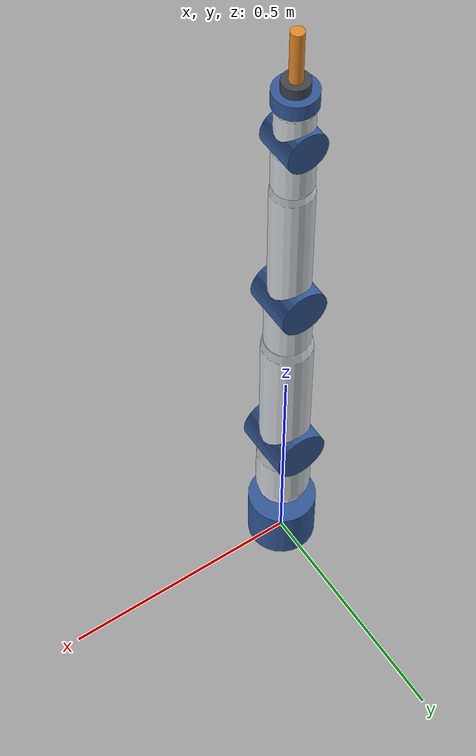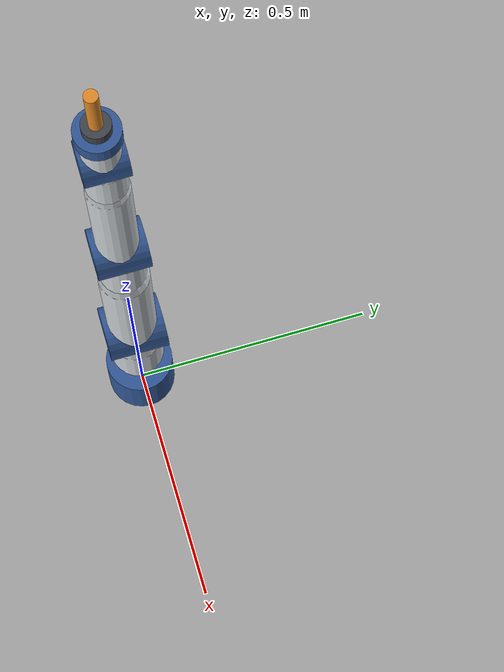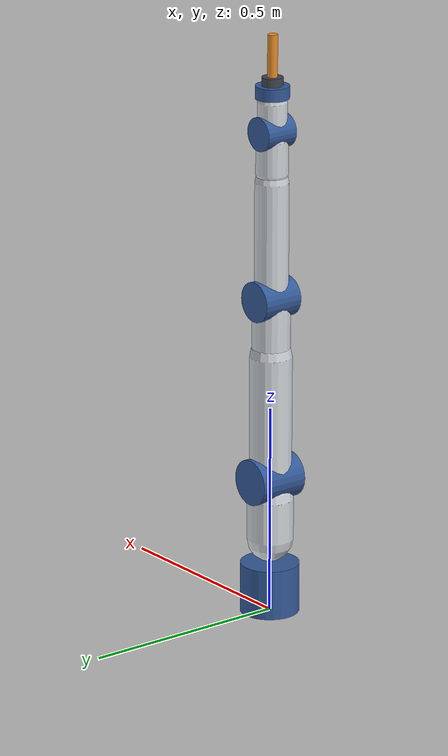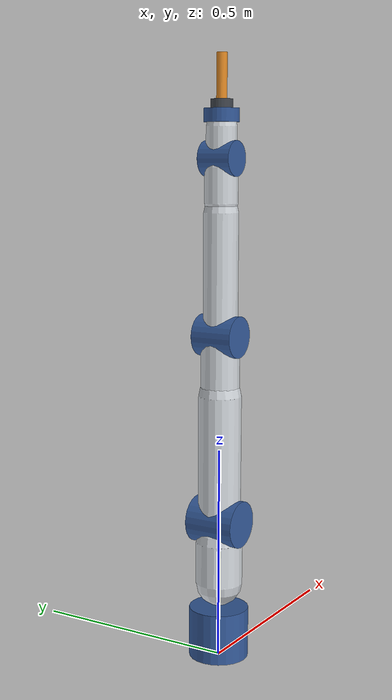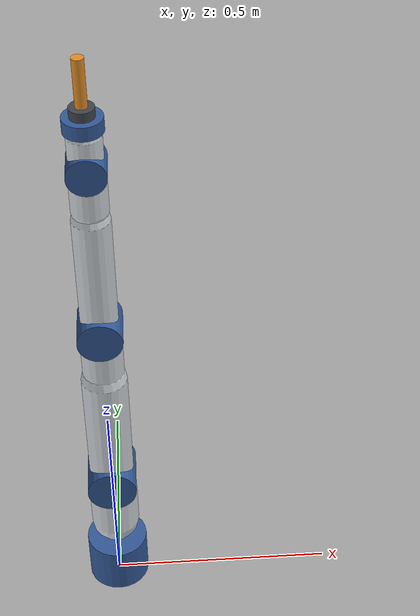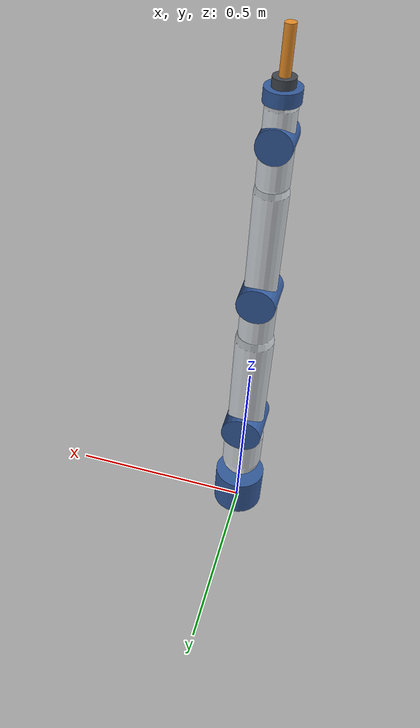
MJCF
<mujoco model="arm7_peg">
  <compiler angle="radian"/>

  <default>
    <default class="arm7">
      <joint armature="0.05" damping="0.5"/>
      <geom type="capsule" group="2" rgba="0.82 0.84 0.86 1"/>
      <site group="3"/>
      <default class="arm7/accent">
        <geom rgba="0.2 0.35 0.6 1"/>
      </default>
    </default>
    <default class="tool/main"/>
  </default>

  <worldbody>
    <body name="link0" childclass="arm7">
      <geom name="base" class="arm7/accent" size="0.07 0.06" pos="0 0 0.06" quat="0 1 0 0" type="cylinder" mass="4"/>
      <body name="link1" pos="0 0 0.12">
        <joint name="j1" range="-2.9 2.9"/>
        <geom name="link1" size="0.055 0.05" pos="0 0 0.11" quat="0 1 0 0" mass="3"/>
        <body name="link2" pos="0 0 0.21">
          <joint name="j2" range="-1.8 1.8" axis="0 1 0"/>
          <geom name="link2_hub" class="arm7/accent" size="0.055 0.06" quat="0.707107 0.707107 0 0" type="cylinder" mass="1"/>
          <geom name="link2" size="0.05 0.15" pos="0 0 0.15" quat="0 1 0 0" mass="2.5"/>
          <body name="link3" pos="0 0 0.3">
            <joint name="j3" range="-2.9 2.9"/>
            <geom name="link3" size="0.045 0.05" pos="0 0 0.07" quat="0 1 0 0" mass="1.5"/>
            <body name="link4" pos="0 0 0.14">
              <joint name="j4" range="-0.1 2.9" axis="0 1 0"/>
              <geom name="link4_hub" class="arm7/accent" size="0.048 0.05" quat="0.707107 0.707107 0 0" type="cylinder" mass="0.8"/>
              <geom name="link4" size="0.04 0.14" pos="0 0 0.14" quat="0 1 0 0" mass="1.8"/>
              <body name="link5" pos="0 0 0.28">
                <joint name="j5" range="-2.9 2.9"/>
                <geom name="link5" size="0.038 0.04" pos="0 0 0.06" quat="0 1 0 0" mass="1"/>
                <body name="link6" pos="0 0 0.12">
                  <joint name="j6" range="-2.2 2.2" axis="0 1 0"/>
                  <geom name="link6_hub" class="arm7/accent" size="0.04 0.04" quat="0.707107 0.707107 0 0" type="cylinder" mass="0.5"/>
                  <geom name="link6" size="0.035 0.035" pos="0 0 0.035" quat="0 1 0 0" mass="0.6"/>
                  <body name="link7" pos="0 0 0.08">
                    <joint name="j7" range="-2.9 2.9"/>
                    <geom name="flange" class="arm7/accent" size="0.04 0.015" pos="0 0 0.015" quat="0 1 0 0" type="cylinder" mass="0.3"/>
                    <site name="flange" pos="0 0 0.03"/>
                    <site name="ee" size="0.01" pos="0 0 0.13" rgba="1 0.8 0 1"/>
                    <frame pos="0 0 0.03">
                      <body name="tool/peg">
                        <geom name="tool/peg_collar" size="0.025 0.01" pos="0 0 0.01" type="cylinder" rgba="0.25 0.27 0.3 1" mass="0.1"/>
                        <geom name="tool/peg" size="0.012 0.05" pos="0 0 0.07" type="cylinder" friction="0.3" rgba="0.9 0.55 0.15 1" mass="0.1"/>
                        <site name="tool/peg_tip" size="0.006" pos="0 0 0.12"/>
                      </body>
                    </frame>
                  </body>
                </body>
              </body>
            </body>
          </body>
        </body>
      </body>
    </body>
  </worldbody>

  <actuator>
    <general name="a1" joint="j1" ctrlrange="-80 80"/>
    <general name="a2" joint="j2" ctrlrange="-80 80"/>
    <general name="a3" joint="j3" ctrlrange="-60 60"/>
    <general name="a4" joint="j4" ctrlrange="-60 60"/>
    <general name="a5" joint="j5" ctrlrange="-20 20"/>
    <general name="a6" joint="j6" ctrlrange="-20 20"/>
    <general name="a7" joint="j7" ctrlrange="-10 10"/>
  </actuator>

  <sensor>
    <framepos objtype="site" objname="ee" name="ee_pos"/>
    <framequat objtype="site" objname="ee" name="ee_quat"/>
  </sensor>

  <keyframe>
    <key name="zero"/>
    <key name="home" qpos="0 0.5 0 1.6 0 1.0416 0"/>
  </keyframe>
</mujoco>
